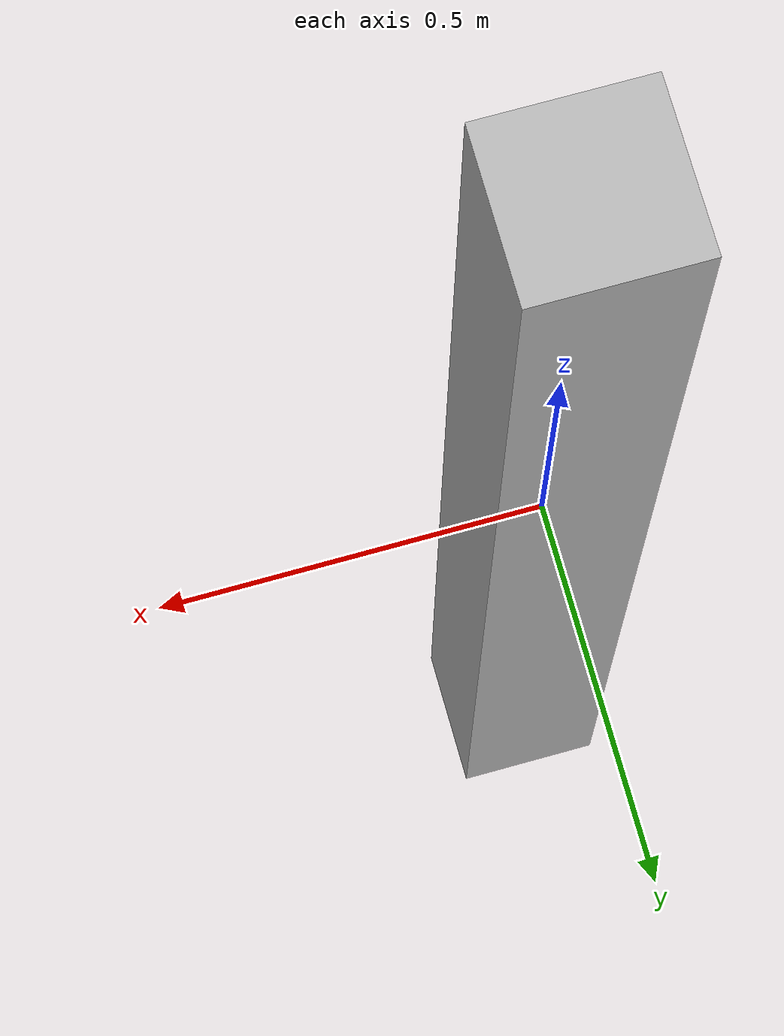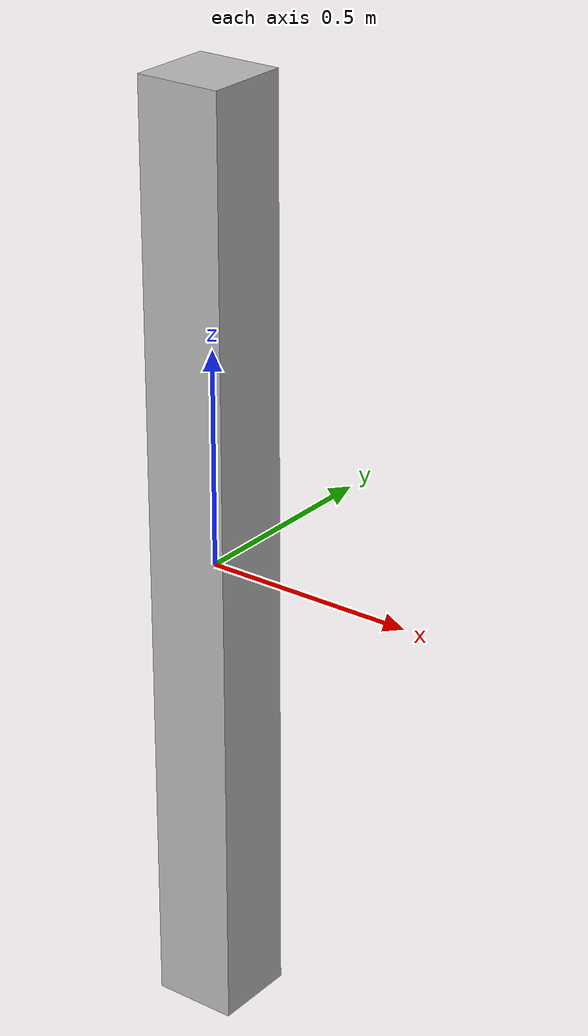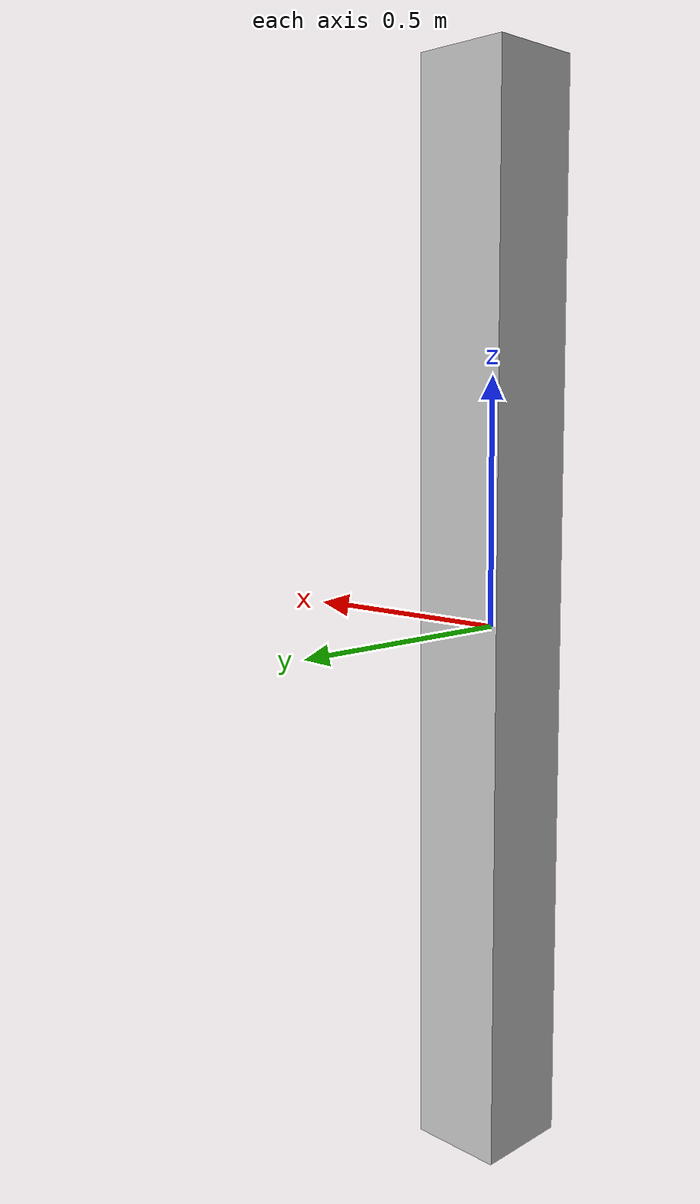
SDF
<?xml version='1.0' encoding='UTF-8'?>
<sdf version="1.9">
  <model name="inject_frames">
    <joint name="top_level_model__top_injected_frame___to___mid_level_model__base___weld_joint" type="fixed">
      <parent>top_level_model::top_injected_frame</parent>
      <child>mid_level_model::base</child>
    </joint>
    <joint name="mid_level_model__mid_injected_frame___to___bottom_level_model__base___weld_joint" type="fixed">
      <parent>mid_level_model::mid_injected_frame</parent>
      <child>bottom_level_model::base</child>
    </joint>
    <model name="top_level_model">
      <frame name="top_injected_frame">
        <pose relative_to="base" degrees="true">1 2 3   10 20 30</pose>
      </frame>
      <include merge="true">
        <name>top_level_model</name>
        <uri>simple_model.sdf</uri>
      </include>
    </model>
    <model name="mid_level_model" placement_frame="base">
      <pose relative_to="top_level_model::top_injected_frame"/>
      <frame name="mid_injected_frame">
        <pose relative_to="base">1 2 3   0 0 0</pose>
      </frame>
      <include merge="true">
        <name>mid_level_model</name>
        <uri>simple_model.sdf</uri>
      </include>
    </model>
    <include>
      <name>bottom_level_model</name>
      <uri>simple_model.sdf</uri>
      <placement_frame>base</placement_frame>
      <pose relative_to="mid_level_model::mid_injected_frame"/>
    </include>
  </model>
</sdf>

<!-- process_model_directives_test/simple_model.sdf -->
<sdf version="1.9">
  <model name="scoped_model">
    <link name="base">
      <inertial>
        <mass>1</mass>
      </inertial>
      <visual name="visual">
        <geometry>
          <box>
            <size>0.2 0.2 2.2</size>
          </box>
        </geometry>
        <material>
          <!--
              Test usage of diffuse map from a separate resource that requires
              package:// URI resolution.
          -->
          <drake:diffuse_map>
            package://process_model_directives_test/circle.png
          </drake:diffuse_map>
        </material>
      </visual>
    </link>
    <frame name="frame">
      <pose relative_to="base">1 2 3  0 0 0</pose>
    </frame>
  </model>
</sdf>
